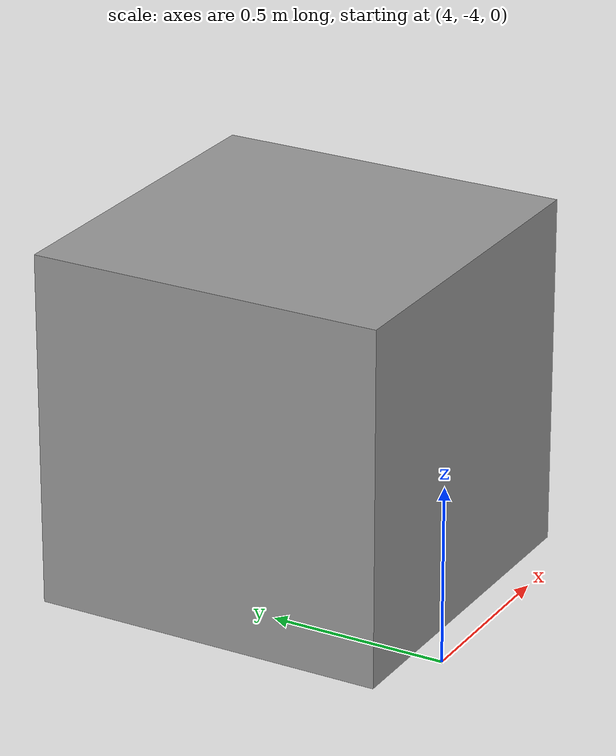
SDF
<?xml version='1.0'?>
<sdf version='1.7'>
  <model name='beyaz_1'>
    <pose>2.39654 -1.95759 0 0 -0 0</pose>
    <link name='Wall_14'>
      <collision name='Wall_14_Collision'>
        <geometry>
          <box>
            <size>1.01 1 1</size>
          </box>
        </geometry>
        <pose>0 0 0.5 0 -0 0</pose>
      </collision>
      <visual name='Wall_14_Visual'>
        <pose>0 0 0.5 0 -0 0</pose>
        <geometry>
          <box>
            <size>1.01 1 1</size>
          </box>
        </geometry>
        <material>
          <script>
            <uri>file://media/materials/scripts/gazebo.material</uri>
            <name>Gazebo/Grey</name>
          </script>
          <ambient>1 1 1 1</ambient>
        </material>
        <meta>
          <layer>0</layer>
        </meta>
      </visual>
      <pose>1.89154 -1.45759 0 0 -0 3.14159</pose>
    </link>
    <static>1</static>
  </model>
</sdf>
